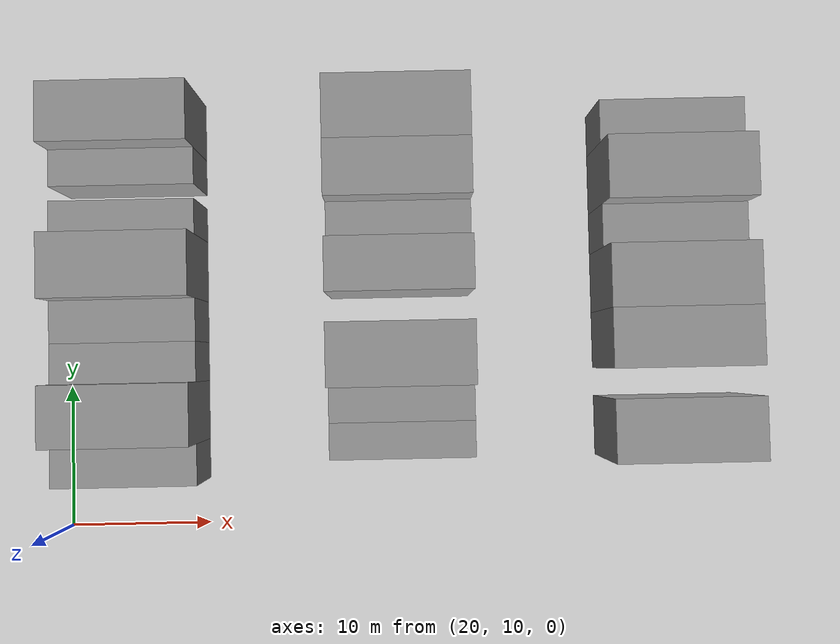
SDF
<sdf version="1.6">
 <world name="default">
  <model name="building_60">
   <static>1</static>
   <pose>25.0000 14.6396 0 0.000000 0.000000 0.000000</pose>
   <link name="link">
    <pose>0 0 3.00 0 0 0</pose>
    <collision name="collision"><geometry><box><size>10.0000 2.8378 6.0000</size></box></geometry></collision>
    <visual name="visual">
     <cast_shadows>0</cast_shadows>
     <geometry><box><size>10.0000 2.8378 6.0000</size></box></geometry>
     <material>
      <script>
       <uri>model://grey_wall/materials/scripts</uri>
       <uri>model://grey_wall/materials/textures</uri>
       <name>vrc/grey_wall</name>
      </script>
     </material>
    </visual>
   </link>
  </model>
  <model name="building_61">
   <static>1</static>
   <pose>25.0000 18.1646 0 0.000000 0.000000 0.000000</pose>
   <link name="link">
    <pose>0 0 4.50 0 0 0</pose>
    <collision name="collision"><geometry><box><size>10.0000 4.2121 9.0000</size></box></geometry></collision>
    <visual name="visual">
     <cast_shadows>0</cast_shadows>
     <geometry><box><size>10.0000 4.2121 9.0000</size></box></geometry>
     <material>
      <script>
       <uri>model://grey_wall/materials/scripts</uri>
       <uri>model://grey_wall/materials/textures</uri>
       <name>vrc/grey_wall</name>
      </script>
     </material>
    </visual>
   </link>
  </model>
  <model name="building_62">
   <static>1</static>
   <pose>25.0000 21.6608 0 0.000000 0.000000 0.000000</pose>
   <link name="link">
    <pose>0 0 3.00 0 0 0</pose>
    <collision name="collision"><geometry><box><size>10.0000 2.7804 6.0000</size></box></geometry></collision>
    <visual name="visual">
     <cast_shadows>0</cast_shadows>
     <geometry><box><size>10.0000 2.7804 6.0000</size></box></geometry>
     <material>
      <script>
       <uri>model://grey_wall/materials/scripts</uri>
       <uri>model://grey_wall/materials/textures</uri>
       <name>vrc/grey_wall</name>
      </script>
     </material>
    </visual>
   </link>
  </model>
  <model name="building_63">
   <static>1</static>
   <pose>25.0000 24.5273 0 0.000000 0.000000 0.000000</pose>
   <link name="link">
    <pose>0 0 3.00 0 0 0</pose>
    <collision name="collision"><geometry><box><size>10.0000 2.9526 6.0000</size></box></geometry></collision>
    <visual name="visual">
     <cast_shadows>0</cast_shadows>
     <geometry><box><size>10.0000 2.9526 6.0000</size></box></geometry>
     <material>
      <script>
       <uri>model://grey_wall/materials/scripts</uri>
       <uri>model://grey_wall/materials/textures</uri>
       <name>vrc/grey_wall</name>
      </script>
     </material>
    </visual>
   </link>
  </model>
  <model name="building_64">
   <static>1</static>
   <pose>25.0000 28.2015 0 0.000000 0.000000 0.000000</pose>
   <link name="link">
    <pose>0 0 4.50 0 0 0</pose>
    <collision name="collision"><geometry><box><size>10.0000 4.3956 9.0000</size></box></geometry></collision>
    <visual name="visual">
     <cast_shadows>0</cast_shadows>
     <geometry><box><size>10.0000 4.3956 9.0000</size></box></geometry>
     <material>
      <script>
       <uri>model://grey_wall/materials/scripts</uri>
       <uri>model://grey_wall/materials/textures</uri>
       <name>vrc/grey_wall</name>
      </script>
     </material>
    </visual>
   </link>
  </model>
  <model name="building_65">
   <static>1</static>
   <pose>25.0000 31.6231 0 0.000000 0.000000 0.000000</pose>
   <link name="link">
    <pose>0 0 3.00 0 0 0</pose>
    <collision name="collision"><geometry><box><size>10.0000 2.4476 6.0000</size></box></geometry></collision>
    <visual name="visual">
     <cast_shadows>0</cast_shadows>
     <geometry><box><size>10.0000 2.4476 6.0000</size></box></geometry>
     <material>
      <script>
       <uri>model://grey_wall/materials/scripts</uri>
       <uri>model://grey_wall/materials/textures</uri>
       <name>vrc/grey_wall</name>
      </script>
     </material>
    </visual>
   </link>
  </model>
  <model name="building_66">
   <static>1</static>
   <pose>25.0000 35.1179 0 0.000000 0.000000 0.000000</pose>
   <link name="link">
    <pose>0 0 3.00 0 0 0</pose>
    <collision name="collision"><geometry><box><size>10.0000 2.5420 6.0000</size></box></geometry></collision>
    <visual name="visual">
     <cast_shadows>0</cast_shadows>
     <geometry><box><size>10.0000 2.5420 6.0000</size></box></geometry>
     <material>
      <script>
       <uri>model://grey_wall/materials/scripts</uri>
       <uri>model://grey_wall/materials/textures</uri>
       <name>vrc/grey_wall</name>
      </script>
     </material>
    </visual>
   </link>
  </model>
  <model name="building_67">
   <static>1</static>
   <pose>25.0000 38.4257 0 0.000000 0.000000 0.000000</pose>
   <link name="link">
    <pose>0 0 4.50 0 0 0</pose>
    <collision name="collision"><geometry><box><size>10.0000 4.0736 9.0000</size></box></geometry></collision>
    <visual name="visual">
     <cast_shadows>0</cast_shadows>
     <geometry><box><size>10.0000 4.0736 9.0000</size></box></geometry>
     <material>
      <script>
       <uri>model://grey_wall/materials/scripts</uri>
       <uri>model://grey_wall/materials/textures</uri>
       <name>vrc/grey_wall</name>
      </script>
     </material>
    </visual>
   </link>
  </model>
  <model name="building_171">
   <static>1</static>
   <pose>44.0000 16.0193 0 0.000000 0.000000 0.000000</pose>
   <link name="link">
    <pose>0 0 3.00 0 0 0</pose>
    <collision name="collision"><geometry><box><size>10.0000 2.5092 6.0000</size></box></geometry></collision>
    <visual name="visual">
     <cast_shadows>0</cast_shadows>
     <geometry><box><size>10.0000 2.5092 6.0000</size></box></geometry>
     <material>
      <script>
       <uri>model://grey_wall/materials/scripts</uri>
       <uri>model://grey_wall/materials/textures</uri>
       <name>vrc/grey_wall</name>
      </script>
     </material>
    </visual>
   </link>
  </model>
  <model name="building_172">
   <static>1</static>
   <pose>44.0000 18.4997 0 0.000000 0.000000 0.000000</pose>
   <link name="link">
    <pose>0 0 3.00 0 0 0</pose>
    <collision name="collision"><geometry><box><size>10.0000 2.4517 6.0000</size></box></geometry></collision>
    <visual name="visual">
     <cast_shadows>0</cast_shadows>
     <geometry><box><size>10.0000 2.4517 6.0000</size></box></geometry>
     <material>
      <script>
       <uri>model://grey_wall/materials/scripts</uri>
       <uri>model://grey_wall/materials/textures</uri>
       <name>vrc/grey_wall</name>
      </script>
     </material>
    </visual>
   </link>
  </model>
  <model name="building_173">
   <static>1</static>
   <pose>44.0000 21.8963 0 0.000000 0.000000 0.000000</pose>
   <link name="link">
    <pose>0 0 4.50 0 0 0</pose>
    <collision name="collision"><geometry><box><size>10.0000 4.3415 9.0000</size></box></geometry></collision>
    <visual name="visual">
     <cast_shadows>0</cast_shadows>
     <geometry><box><size>10.0000 4.3415 9.0000</size></box></geometry>
     <material>
      <script>
       <uri>model://grey_wall/materials/scripts</uri>
       <uri>model://grey_wall/materials/textures</uri>
       <name>vrc/grey_wall</name>
      </script>
     </material>
    </visual>
   </link>
  </model>
  <model name="building_174">
   <static>1</static>
   <pose>44.0000 27.9106 0 0.000000 0.000000 0.000000</pose>
   <link name="link">
    <pose>0 0 4.50 0 0 0</pose>
    <collision name="collision"><geometry><box><size>10.0000 3.6871 9.0000</size></box></geometry></collision>
    <visual name="visual">
     <cast_shadows>0</cast_shadows>
     <geometry><box><size>10.0000 3.6871 9.0000</size></box></geometry>
     <material>
      <script>
       <uri>model://grey_wall/materials/scripts</uri>
       <uri>model://grey_wall/materials/textures</uri>
       <name>vrc/grey_wall</name>
      </script>
     </material>
    </visual>
   </link>
  </model>
  <model name="building_175">
   <static>1</static>
   <pose>44.0000 31.0799 0 0.000000 0.000000 0.000000</pose>
   <link name="link">
    <pose>0 0 3.00 0 0 0</pose>
    <collision name="collision"><geometry><box><size>10.0000 2.6515 6.0000</size></box></geometry></collision>
    <visual name="visual">
     <cast_shadows>0</cast_shadows>
     <geometry><box><size>10.0000 2.6515 6.0000</size></box></geometry>
     <material>
      <script>
       <uri>model://grey_wall/materials/scripts</uri>
       <uri>model://grey_wall/materials/textures</uri>
       <name>vrc/grey_wall</name>
      </script>
     </material>
    </visual>
   </link>
  </model>
  <model name="building_176">
   <static>1</static>
   <pose>44.0000 34.3299 0 0.000000 0.000000 0.000000</pose>
   <link name="link">
    <pose>0 0 4.50 0 0 0</pose>
    <collision name="collision"><geometry><box><size>10.0000 3.8486 9.0000</size></box></geometry></collision>
    <visual name="visual">
     <cast_shadows>0</cast_shadows>
     <geometry><box><size>10.0000 3.8486 9.0000</size></box></geometry>
     <material>
      <script>
       <uri>model://grey_wall/materials/scripts</uri>
       <uri>model://grey_wall/materials/textures</uri>
       <name>vrc/grey_wall</name>
      </script>
     </material>
    </visual>
   </link>
  </model>
  <model name="building_177">
   <static>1</static>
   <pose>44.0000 38.4227 0 0.000000 0.000000 0.000000</pose>
   <link name="link">
    <pose>0 0 4.50 0 0 0</pose>
    <collision name="collision"><geometry><box><size>10.0000 4.3371 9.0000</size></box></geometry></collision>
    <visual name="visual">
     <cast_shadows>0</cast_shadows>
     <geometry><box><size>10.0000 4.3371 9.0000</size></box></geometry>
     <material>
      <script>
       <uri>model://grey_wall/materials/scripts</uri>
       <uri>model://grey_wall/materials/textures</uri>
       <name>vrc/grey_wall</name>
      </script>
     </material>
    </visual>
   </link>
  </model>
  <model name="building_295">
   <static>1</static>
   <pose>63.0000 16.4858 0 0.000000 0.000000 0.000000</pose>
   <link name="link">
    <pose>0 0 4.50 0 0 0</pose>
    <collision name="collision"><geometry><box><size>10.0000 4.2705 9.0000</size></box></geometry></collision>
    <visual name="visual">
     <cast_shadows>0</cast_shadows>
     <geometry><box><size>10.0000 4.2705 9.0000</size></box></geometry>
     <material>
      <script>
       <uri>model://grey_wall/materials/scripts</uri>
       <uri>model://grey_wall/materials/textures</uri>
       <name>vrc/grey_wall</name>
      </script>
     </material>
    </visual>
   </link>
  </model>
  <model name="building_296">
   <static>1</static>
   <pose>63.0000 22.6328 0 0.000000 0.000000 0.000000</pose>
   <link name="link">
    <pose>0 0 4.50 0 0 0</pose>
    <collision name="collision"><geometry><box><size>10.0000 4.0236 9.0000</size></box></geometry></collision>
    <visual name="visual">
     <cast_shadows>0</cast_shadows>
     <geometry><box><size>10.0000 4.0236 9.0000</size></box></geometry>
     <material>
      <script>
       <uri>model://grey_wall/materials/scripts</uri>
       <uri>model://grey_wall/materials/textures</uri>
       <name>vrc/grey_wall</name>
      </script>
     </material>
    </visual>
   </link>
  </model>
  <model name="building_297">
   <static>1</static>
   <pose>63.0000 26.7725 0 0.000000 0.000000 0.000000</pose>
   <link name="link">
    <pose>0 0 4.50 0 0 0</pose>
    <collision name="collision"><geometry><box><size>10.0000 4.2557 9.0000</size></box></geometry></collision>
    <visual name="visual">
     <cast_shadows>0</cast_shadows>
     <geometry><box><size>10.0000 4.2557 9.0000</size></box></geometry>
     <material>
      <script>
       <uri>model://grey_wall/materials/scripts</uri>
       <uri>model://grey_wall/materials/textures</uri>
       <name>vrc/grey_wall</name>
      </script>
     </material>
    </visual>
   </link>
  </model>
  <model name="building_298">
   <static>1</static>
   <pose>63.0000 30.3787 0 0.000000 0.000000 0.000000</pose>
   <link name="link">
    <pose>0 0 3.00 0 0 0</pose>
    <collision name="collision"><geometry><box><size>10.0000 2.9568 6.0000</size></box></geometry></collision>
    <visual name="visual">
     <cast_shadows>0</cast_shadows>
     <geometry><box><size>10.0000 2.9568 6.0000</size></box></geometry>
     <material>
      <script>
       <uri>model://grey_wall/materials/scripts</uri>
       <uri>model://grey_wall/materials/textures</uri>
       <name>vrc/grey_wall</name>
      </script>
     </material>
    </visual>
   </link>
  </model>
  <model name="building_299">
   <static>1</static>
   <pose>63.0000 33.9895 0 0.000000 0.000000 0.000000</pose>
   <link name="link">
    <pose>0 0 4.50 0 0 0</pose>
    <collision name="collision"><geometry><box><size>10.0000 4.2648 9.0000</size></box></geometry></collision>
    <visual name="visual">
     <cast_shadows>0</cast_shadows>
     <geometry><box><size>10.0000 4.2648 9.0000</size></box></geometry>
     <material>
      <script>
       <uri>model://grey_wall/materials/scripts</uri>
       <uri>model://grey_wall/materials/textures</uri>
       <name>vrc/grey_wall</name>
      </script>
     </material>
    </visual>
   </link>
  </model>
  <model name="building_300">
   <static>1</static>
   <pose>63.0000 37.6013 0 0.000000 0.000000 0.000000</pose>
   <link name="link">
    <pose>0 0 3.00 0 0 0</pose>
    <collision name="collision"><geometry><box><size>10.0000 2.9587 6.0000</size></box></geometry></collision>
    <visual name="visual">
     <cast_shadows>0</cast_shadows>
     <geometry><box><size>10.0000 2.9587 6.0000</size></box></geometry>
     <material>
      <script>
       <uri>model://grey_wall/materials/scripts</uri>
       <uri>model://grey_wall/materials/textures</uri>
       <name>vrc/grey_wall</name>
      </script>
     </material>
    </visual>
   </link>
  </model>
 </world>
</sdf>
